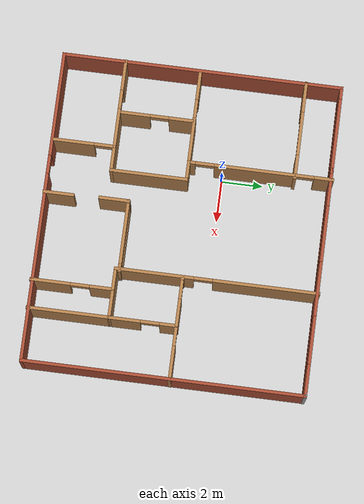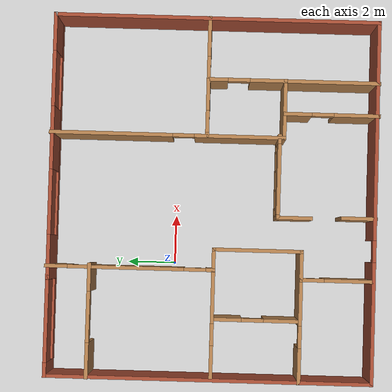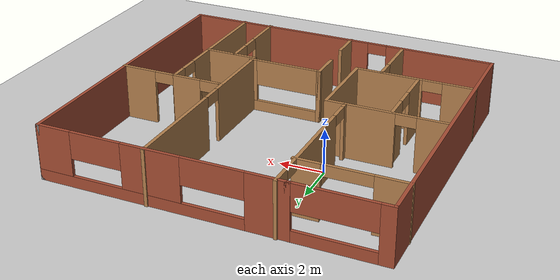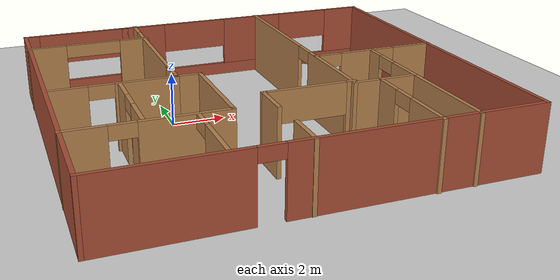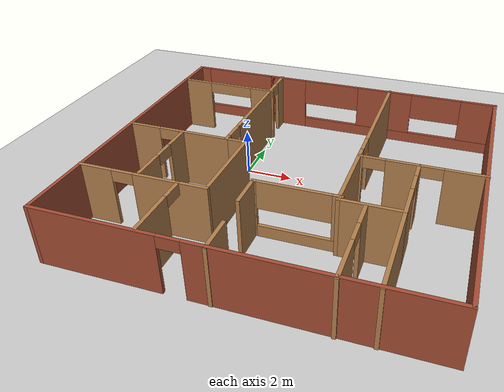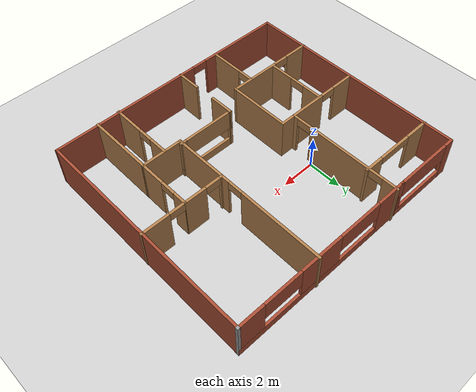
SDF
<sdf version="1.6">
 <world name="default">
  <plugin name="hello_world" filename="build/libhello_world.so"/>
  <light name="sun" type="directional">
   <pose>0 0 10 0 -0 0</pose>
   <diffuse>0.8 0.8 0.8 1</diffuse>
   <specular>0.2 0.2 0.2 1</specular>
   <attenuation>
    <range>1000</range>
    <constant>0.9</constant>
    <linear>0.01</linear>
    <quadratic>0.001</quadratic>
   </attenuation>
   <direction>-0.5 0.1 -0.9</direction>
  </light>
  <model name="ground_plane">
   <static>1</static>
   <link name="link">
    <collision name="collision">
     <geometry><plane><normal>0 0 1</normal><size>100 100</size></plane></geometry>
     <surface><friction><ode><mu>100</mu><mu2>50</mu2></ode></friction></surface>
    </collision>
    <visual name="visual">
     <cast_shadows>0</cast_shadows>
     <geometry><plane><normal>0 0 1</normal><size>100 100</size></plane></geometry>
     <material>
      <script><uri>file://media/materials/scripts/gazebo.material</uri><name>Gazebo/Grey</name></script>
     </material>
    </visual>
   </link>
  </model>
  <gravity>0 0 -9.8</gravity>
  <magnetic_field>6e-06 2.3e-05 -4.2e-05</magnetic_field>
  <atmosphere type="adiabatic"/>
  <physics name="default_physics" default="0" type="ode">
   <max_step_size>0.001</max_step_size>
   <real_time_factor>1</real_time_factor>
   <real_time_update_rate>1000</real_time_update_rate>
  </physics>
  <scene><ambient>0.4 0.4 0.4 1</ambient><background>0.7 0.7 0.7 1</background><shadows>1</shadows></scene>
  <spherical_coordinates>
   <surface_model>EARTH_WGS84</surface_model>
   <latitude_deg>0</latitude_deg>
   <longitude_deg>0</longitude_deg>
   <elevation>0</elevation>
   <heading_deg>0</heading_deg>
  </spherical_coordinates>
  <model name="Arpeggio_D_2">
   <pose>2.71001 -1.51912 0 0 -0 0</pose>
   <link name="Wall_0">
    <pose>2.00293 6.66912 0 0 -0 0</pose>
    <visual name="Wall_0_Visual_0">
     <pose>-4.58268 0 1.25 0 -0 0</pose>
     <geometry><box><size>1.83464 0.15 2.5</size></box></geometry>
     <material>
      <script><uri>file://media/materials/scripts/gazebo.material</uri><name>Gazebo/Bricks</name></script>
      <ambient>1 1 1 1</ambient>
     </material>
     <meta><layer>0</layer></meta>
    </visual>
    <collision name="Wall_0_Collision_0">
     <geometry><box><size>1.83464 0.15 2.5</size></box></geometry>
     <pose>-4.58268 0 1.25 0 -0 0</pose>
    </collision>
    <visual name="Wall_0_Visual_1">
     <pose>0.917321 0 0.25 0 -0 0</pose>
     <geometry><box><size>9.16536 0.15 0.5</size></box></geometry>
     <material>
      <script><uri>file://media/materials/scripts/gazebo.material</uri><name>Gazebo/Bricks</name></script>
      <ambient>1 1 1 1</ambient>
     </material>
     <meta><layer>0</layer></meta>
    </visual>
    <collision name="Wall_0_Collision_1">
     <geometry><box><size>9.16536 0.15 0.5</size></box></geometry>
     <pose>0.917321 0 0.25 0 -0 0</pose>
    </collision>
    <visual name="Wall_0_Visual_2">
     <pose>0.323908 0 1.5 0 -0 0</pose>
     <geometry><box><size>2.60676 0.15 2</size></box></geometry>
     <material>
      <script><uri>file://media/materials/scripts/gazebo.material</uri><name>Gazebo/Bricks</name></script>
      <ambient>1 1 1 1</ambient>
     </material>
     <meta><layer>0</layer></meta>
    </visual>
    <collision name="Wall_0_Collision_2">
     <geometry><box><size>2.60676 0.15 2</size></box></geometry>
     <pose>0.323908 0 1.5 0 -0 0</pose>
    </collision>
    <visual name="Wall_0_Visual_3">
     <pose>4.70887 0 1.5 0 -0 0</pose>
     <geometry><box><size>1.58225 0.15 2</size></box></geometry>
     <material>
      <script><uri>file://media/materials/scripts/gazebo.material</uri><name>Gazebo/Bricks</name></script>
      <ambient>1 1 1 1</ambient>
     </material>
     <meta><layer>0</layer></meta>
    </visual>
    <collision name="Wall_0_Collision_3">
     <geometry><box><size>1.58225 0.15 2</size></box></geometry>
     <pose>4.70887 0 1.5 0 -0 0</pose>
    </collision>
    <visual name="Wall_0_Visual_4">
     <pose>-2.32241 0 1.9 0 -0 0</pose>
     <geometry><box><size>2.68588 0.15 1.2</size></box></geometry>
     <material>
      <script><uri>file://media/materials/scripts/gazebo.material</uri><name>Gazebo/Bricks</name></script>
      <ambient>1 1 1 1</ambient>
     </material>
     <meta><layer>0</layer></meta>
    </visual>
    <collision name="Wall_0_Collision_4">
     <geometry><box><size>2.68588 0.15 1.2</size></box></geometry>
     <pose>-2.32241 0 1.9 0 -0 0</pose>
    </collision>
    <visual name="Wall_0_Visual_5">
     <pose>2.77252 0 1.9 0 -0 0</pose>
     <geometry><box><size>2.29046 0.15 1.2</size></box></geometry>
     <material>
      <script><uri>file://media/materials/scripts/gazebo.material</uri><name>Gazebo/Bricks</name></script>
      <ambient>1 1 1 1</ambient>
     </material>
     <meta><layer>0</layer></meta>
    </visual>
    <collision name="Wall_0_Collision_5">
     <geometry><box><size>2.29046 0.15 1.2</size></box></geometry>
     <pose>2.77252 0 1.9 0 -0 0</pose>
    </collision>
   </link>
   <link name="Wall_10">
    <pose>0.002933 -6.68088 0 0 -0 3.14159</pose>
    <visual name="Wall_10_Visual_0">
     <pose>-2.97644 0 1.25 0 -0 0</pose>
     <geometry><box><size>9.04713 0.15 2.5</size></box></geometry>
     <material>
      <script><uri>file://media/materials/scripts/gazebo.material</uri><name>Gazebo/Bricks</name></script>
      <ambient>1 1 1 1</ambient>
     </material>
     <meta><layer>0</layer></meta>
    </visual>
    <collision name="Wall_10_Collision_0">
     <geometry><box><size>9.04713 0.15 2.5</size></box></geometry>
     <pose>-2.97644 0 1.25 0 -0 0</pose>
    </collision>
    <visual name="Wall_10_Visual_1">
     <pose>4.97356 0 1.25 0 -0 0</pose>
     <geometry><box><size>5.05287 0.15 2.5</size></box></geometry>
     <material>
      <script><uri>file://media/materials/scripts/gazebo.material</uri><name>Gazebo/Bricks</name></script>
      <ambient>1 1 1 1</ambient>
     </material>
     <meta><layer>0</layer></meta>
    </visual>
    <collision name="Wall_10_Collision_1">
     <geometry><box><size>5.05287 0.15 2.5</size></box></geometry>
     <pose>4.97356 0 1.25 0 -0 0</pose>
    </collision>
    <visual name="Wall_10_Visual_2">
     <pose>1.99713 0 2.25 0 -0 0</pose>
     <geometry><box><size>0.9 0.15 0.5</size></box></geometry>
     <material>
      <script><uri>file://media/materials/scripts/gazebo.material</uri><name>Gazebo/Bricks</name></script>
      <ambient>1 1 1 1</ambient>
     </material>
     <meta><layer>0</layer></meta>
    </visual>
    <collision name="Wall_10_Collision_2">
     <geometry><box><size>0.9 0.15 0.5</size></box></geometry>
     <pose>1.99713 0 2.25 0 -0 0</pose>
    </collision>
   </link>
   <link name="Wall_11">
    <collision name="Wall_11_Collision">
     <geometry><box><size>13.5 0.15 2.5</size></box></geometry>
     <pose>0 0 1.25 0 -0 0</pose>
    </collision>
    <visual name="Wall_11_Visual">
     <pose>0 0 1.25 0 -0 0</pose>
     <geometry><box><size>13.5 0.15 2.5</size></box></geometry>
     <material>
      <script><uri>file://media/materials/scripts/gazebo.material</uri><name>Gazebo/Bricks</name></script>
      <ambient>1 1 1 1</ambient>
     </material>
     <meta><layer>0</layer></meta>
    </visual>
    <pose>-7.42207 -0.005883 0 0 -0 1.5708</pose>
   </link>
   <link name="Wall_13">
    <pose>-2.93719 3.31497 0 0 0 -1.5708</pose>
    <visual name="Wall_13_Visual_0">
     <pose>-3.02713 0 1.25 0 -0 0</pose>
     <geometry><box><size>0.94573 0.15 2.5</size></box></geometry>
     <material>
      <script><uri>file://media/materials/scripts/gazebo.material</uri><name>Gazebo/Wood</name></script>
      <ambient>1 1 1 1</ambient>
     </material>
     <meta><layer>0</layer></meta>
    </visual>
    <collision name="Wall_13_Collision_0">
     <geometry><box><size>0.94573 0.15 2.5</size></box></geometry>
     <pose>-3.02713 0 1.25 0 -0 0</pose>
    </collision>
    <visual name="Wall_13_Visual_1">
     <pose>0.276448 0 1.25 0 -0 0</pose>
     <geometry><box><size>3.86144 0.15 2.5</size></box></geometry>
     <material>
      <script><uri>file://media/materials/scripts/gazebo.material</uri><name>Gazebo/Wood</name></script>
      <ambient>1 1 1 1</ambient>
     </material>
     <meta><layer>0</layer></meta>
    </visual>
    <collision name="Wall_13_Collision_1">
     <geometry><box><size>3.86144 0.15 2.5</size></box></geometry>
     <pose>0.276448 0 1.25 0 -0 0</pose>
    </collision>
    <visual name="Wall_13_Visual_2">
     <pose>3.30358 0 1.25 0 -0 0</pose>
     <geometry><box><size>0.392835 0.15 2.5</size></box></geometry>
     <material>
      <script><uri>file://media/materials/scripts/gazebo.material</uri><name>Gazebo/Wood</name></script>
      <ambient>1 1 1 1</ambient>
     </material>
     <meta><layer>0</layer></meta>
    </visual>
    <collision name="Wall_13_Collision_2">
     <geometry><box><size>0.392835 0.15 2.5</size></box></geometry>
     <pose>3.30358 0 1.25 0 -0 0</pose>
    </collision>
    <visual name="Wall_13_Visual_3">
     <pose>-2.10427 0 2.25 0 -0 0</pose>
     <geometry><box><size>0.9 0.15 0.5</size></box></geometry>
     <material>
      <script><uri>file://media/materials/scripts/gazebo.material</uri><name>Gazebo/Wood</name></script>
      <ambient>1 1 1 1</ambient>
     </material>
     <meta><layer>0</layer></meta>
    </visual>
    <collision name="Wall_13_Collision_3">
     <geometry><box><size>0.9 0.15 0.5</size></box></geometry>
     <pose>-2.10427 0 2.25 0 -0 0</pose>
    </collision>
    <visual name="Wall_13_Visual_4">
     <pose>2.65716 0 2.25 0 -0 0</pose>
     <geometry><box><size>0.9 0.15 0.5</size></box></geometry>
     <material>
      <script><uri>file://media/materials/scripts/gazebo.material</uri><name>Gazebo/Wood</name></script>
      <ambient>1 1 1 1</ambient>
     </material>
     <meta><layer>0</layer></meta>
    </visual>
    <collision name="Wall_13_Collision_4">
     <geometry><box><size>0.9 0.15 0.5</size></box></geometry>
     <pose>2.65716 0 2.25 0 -0 0</pose>
    </collision>
   </link>
   <link name="Wall_14">
    <pose>-5.11219 -0.110027 0 0 -0 3.14159</pose>
    <visual name="Wall_14_Visual_0">
     <pose>-1.1265 0 1.25 0 -0 0</pose>
     <geometry><box><size>2.247 0.15 2.5</size></box></geometry>
     <material>
      <script><uri>file://media/materials/scripts/gazebo.material</uri><name>Gazebo/Wood</name></script>
      <ambient>1 1 1 1</ambient>
     </material>
     <meta><layer>0</layer></meta>
    </visual>
    <collision name="Wall_14_Collision_0">
     <geometry><box><size>2.247 0.15 2.5</size></box></geometry>
     <pose>-1.1265 0 1.25 0 -0 0</pose>
    </collision>
    <visual name="Wall_14_Visual_1">
     <pose>1.5735 0 1.25 0 -0 0</pose>
     <geometry><box><size>1.353 0.15 2.5</size></box></geometry>
     <material>
      <script><uri>file://media/materials/scripts/gazebo.material</uri><name>Gazebo/Wood</name></script>
      <ambient>1 1 1 1</ambient>
     </material>
     <meta><layer>0</layer></meta>
    </visual>
    <collision name="Wall_14_Collision_1">
     <geometry><box><size>1.353 0.15 2.5</size></box></geometry>
     <pose>1.5735 0 1.25 0 -0 0</pose>
    </collision>
    <visual name="Wall_14_Visual_2">
     <pose>0.447 0 2.25 0 -0 0</pose>
     <geometry><box><size>0.9 0.15 0.5</size></box></geometry>
     <material>
      <script><uri>file://media/materials/scripts/gazebo.material</uri><name>Gazebo/Wood</name></script>
      <ambient>1 1 1 1</ambient>
     </material>
     <meta><layer>0</layer></meta>
    </visual>
    <collision name="Wall_14_Collision_2">
     <geometry><box><size>0.9 0.15 0.5</size></box></geometry>
     <pose>0.447 0 2.25 0 -0 0</pose>
    </collision>
   </link>
   <link name="Wall_16">
    <collision name="Wall_16_Collision">
     <geometry><box><size>1 0.15 2.5</size></box></geometry>
     <pose>0 0 1.25 0 -0 0</pose>
    </collision>
    <visual name="Wall_16_Visual">
     <pose>0 0 1.25 0 -0 0</pose>
     <geometry><box><size>1 0.15 2.5</size></box></geometry>
     <material>
      <script><uri>file://media/materials/scripts/gazebo.material</uri><name>Gazebo/Wood</name></script>
      <ambient>1 1 1 1</ambient>
     </material>
     <meta><layer>0</layer></meta>
    </visual>
    <pose>-2.51219 -0.110027 0 0 -0 0</pose>
   </link>
   <link name="Wall_17">
    <collision name="Wall_17_Collision">
     <geometry><box><size>3.75 0.15 2.5</size></box></geometry>
     <pose>0 0 1.25 0 -0 0</pose>
    </collision>
    <visual name="Wall_17_Visual">
     <pose>0 0 1.25 0 -0 0</pose>
     <geometry><box><size>3.75 0.15 2.5</size></box></geometry>
     <material>
      <script><uri>file://media/materials/scripts/gazebo.material</uri><name>Gazebo/Wood</name></script>
      <ambient>1 1 1 1</ambient>
     </material>
     <meta><layer>0</layer></meta>
    </visual>
    <pose>-2.08719 -1.91003 0 0 0 -1.5708</pose>
   </link>
   <link name="Wall_18">
    <pose>-4.76219 -3.71003 0 0 -0 3.14159</pose>
    <visual name="Wall_18_Visual_0">
     <pose>-1.19659 0 1.25 0 -0 0</pose>
     <geometry><box><size>3.10682 0.15 2.5</size></box></geometry>
     <material>
      <script><uri>file://media/materials/scripts/gazebo.material</uri><name>Gazebo/Wood</name></script>
      <ambient>1 1 1 1</ambient>
     </material>
     <meta><layer>0</layer></meta>
    </visual>
    <collision name="Wall_18_Collision_0">
     <geometry><box><size>3.10682 0.15 2.5</size></box></geometry>
     <pose>-1.19659 0 1.25 0 -0 0</pose>
    </collision>
    <visual name="Wall_18_Visual_1">
     <pose>2.00341 0 1.25 0 -0 0</pose>
     <geometry><box><size>1.49318 0.15 2.5</size></box></geometry>
     <material>
      <script><uri>file://media/materials/scripts/gazebo.material</uri><name>Gazebo/Wood</name></script>
      <ambient>1 1 1 1</ambient>
     </material>
     <meta><layer>0</layer></meta>
    </visual>
    <collision name="Wall_18_Collision_1">
     <geometry><box><size>1.49318 0.15 2.5</size></box></geometry>
     <pose>2.00341 0 1.25 0 -0 0</pose>
    </collision>
    <visual name="Wall_18_Visual_2">
     <pose>0.80682 0 2.25 0 -0 0</pose>
     <geometry><box><size>0.9 0.15 0.5</size></box></geometry>
     <material>
      <script><uri>file://media/materials/scripts/gazebo.material</uri><name>Gazebo/Wood</name></script>
      <ambient>1 1 1 1</ambient>
     </material>
     <meta><layer>0</layer></meta>
    </visual>
    <collision name="Wall_18_Collision_2">
     <geometry><box><size>0.9 0.15 0.5</size></box></geometry>
     <pose>0.80682 0 2.25 0 -0 0</pose>
    </collision>
   </link>
   <link name="Wall_20">
    <pose>-3.23619 -5.15003 0 0 0 -1.5708</pose>
    <visual name="Wall_20_Visual_0">
     <pose>-1.445 0 1.25 0 -0 0</pose>
     <geometry><box><size>0.110002 0.15 2.5</size></box></geometry>
     <material>
      <script><uri>file://media/materials/scripts/gazebo.material</uri><name>Gazebo/Wood</name></script>
      <ambient>1 1 1 1</ambient>
     </material>
     <meta><layer>0</layer></meta>
    </visual>
    <collision name="Wall_20_Collision_0">
     <geometry><box><size>0.110002 0.15 2.5</size></box></geometry>
     <pose>-1.445 0 1.25 0 -0 0</pose>
    </collision>
    <visual name="Wall_20_Visual_1">
     <pose>0.505001 0 1.25 0 -0 0</pose>
     <geometry><box><size>1.99 0.15 2.5</size></box></geometry>
     <material>
      <script><uri>file://media/materials/scripts/gazebo.material</uri><name>Gazebo/Wood</name></script>
      <ambient>1 1 1 1</ambient>
     </material>
     <meta><layer>0</layer></meta>
    </visual>
    <collision name="Wall_20_Collision_1">
     <geometry><box><size>1.99 0.15 2.5</size></box></geometry>
     <pose>0.505001 0 1.25 0 -0 0</pose>
    </collision>
    <visual name="Wall_20_Visual_2">
     <pose>-0.939998 0 2.25 0 -0 0</pose>
     <geometry><box><size>0.9 0.15 0.5</size></box></geometry>
     <material>
      <script><uri>file://media/materials/scripts/gazebo.material</uri><name>Gazebo/Wood</name></script>
      <ambient>1 1 1 1</ambient>
     </material>
     <meta><layer>0</layer></meta>
    </visual>
    <collision name="Wall_20_Collision_2">
     <geometry><box><size>0.9 0.15 0.5</size></box></geometry>
     <pose>-0.939998 0 2.25 0 -0 0</pose>
    </collision>
   </link>
   <link name="Wall_22">
    <pose>-4.93819 -1.88103 0 0 0 -1.5708</pose>
    <visual name="Wall_22_Visual_0">
     <pose>-1.15846 0 1.25 0 -0 0</pose>
     <geometry><box><size>1.18308 0.15 2.5</size></box></geometry>
     <material>
      <script><uri>file://media/materials/scripts/gazebo.material</uri><name>Gazebo/Wood</name></script>
      <ambient>1 1 1 1</ambient>
     </material>
     <meta><layer>0</layer></meta>
    </visual>
    <collision name="Wall_22_Collision_0">
     <geometry><box><size>1.18308 0.15 2.5</size></box></geometry>
     <pose>-1.15846 0 1.25 0 -0 0</pose>
    </collision>
    <visual name="Wall_22_Visual_1">
     <pose>1.04154 0 1.25 0 -0 0</pose>
     <geometry><box><size>1.41692 0.15 2.5</size></box></geometry>
     <material>
      <script><uri>file://media/materials/scripts/gazebo.material</uri><name>Gazebo/Wood</name></script>
      <ambient>1 1 1 1</ambient>
     </material>
     <meta><layer>0</layer></meta>
    </visual>
    <collision name="Wall_22_Collision_1">
     <geometry><box><size>1.41692 0.15 2.5</size></box></geometry>
     <pose>1.04154 0 1.25 0 -0 0</pose>
    </collision>
    <visual name="Wall_22_Visual_2">
     <pose>-0.116922 0 2.25 0 -0 0</pose>
     <geometry><box><size>0.9 0.15 0.5</size></box></geometry>
     <material>
      <script><uri>file://media/materials/scripts/gazebo.material</uri><name>Gazebo/Wood</name></script>
      <ambient>1 1 1 1</ambient>
     </material>
     <meta><layer>0</layer></meta>
    </visual>
    <collision name="Wall_22_Collision_2">
     <geometry><box><size>0.9 0.15 0.5</size></box></geometry>
     <pose>-0.116922 0 2.25 0 -0 0</pose>
    </collision>
   </link>
   <link name="Wall_24">
    <pose>2.56284 1.92413 0 0 0 -1.5708</pose>
    <visual name="Wall_24_Visual_0">
     <pose>-2.3372 0 1.25 0 -0 0</pose>
     <geometry><box><size>5.07559 0.15 2.5</size></box></geometry>
     <material>
      <script><uri>file://media/materials/scripts/gazebo.material</uri><name>Gazebo/Wood</name></script>
      <ambient>1 1 1 1</ambient>
     </material>
     <meta><layer>0</layer></meta>
    </visual>
    <collision name="Wall_24_Collision_0">
     <geometry><box><size>5.07559 0.15 2.5</size></box></geometry>
     <pose>-2.3372 0 1.25 0 -0 0</pose>
    </collision>
    <visual name="Wall_24_Visual_1">
     <pose>2.9878 0 1.25 0 -0 0</pose>
     <geometry><box><size>3.77441 0.15 2.5</size></box></geometry>
     <material>
      <script><uri>file://media/materials/scripts/gazebo.material</uri><name>Gazebo/Wood</name></script>
      <ambient>1 1 1 1</ambient>
     </material>
     <meta><layer>0</layer></meta>
    </visual>
    <collision name="Wall_24_Collision_1">
     <geometry><box><size>3.77441 0.15 2.5</size></box></geometry>
     <pose>2.9878 0 1.25 0 -0 0</pose>
    </collision>
    <visual name="Wall_24_Visual_2">
     <pose>0.650593 0 2.25 0 -0 0</pose>
     <geometry><box><size>0.9 0.15 0.5</size></box></geometry>
     <material>
      <script><uri>file://media/materials/scripts/gazebo.material</uri><name>Gazebo/Wood</name></script>
      <ambient>1 1 1 1</ambient>
     </material>
     <meta><layer>0</layer></meta>
    </visual>
    <collision name="Wall_24_Collision_2">
     <geometry><box><size>0.9 0.15 0.5</size></box></geometry>
     <pose>0.650593 0 2.25 0 -0 0</pose>
    </collision>
   </link>
   <link name="Wall_28">
    <collision name="Wall_28_Collision">
     <geometry><box><size>2.5 0.15 2.5</size></box></geometry>
     <pose>0 0 1.25 0 -0 0</pose>
    </collision>
    <visual name="Wall_28_Visual">
     <pose>0 0 1.25 0 -0 0</pose>
     <geometry><box><size>2.5 0.15 2.5</size></box></geometry>
     <material>
      <script><uri>file://media/materials/scripts/gazebo.material</uri><name>Gazebo/Wood</name></script>
      <ambient>1 1 1 1</ambient>
     </material>
     <meta><layer>0</layer></meta>
    </visual>
    <pose>3.73784 -2.87587 0 0 -0 0</pose>
   </link>
   <link name="Wall_29">
    <collision name="Wall_29_Collision">
     <geometry><box><size>4 0.15 2.5</size></box></geometry>
     <pose>0 0 1.25 0 -0 0</pose>
    </collision>
    <visual name="Wall_29_Visual">
     <pose>0 0 1.25 0 -0 0</pose>
     <geometry><box><size>4 0.15 2.5</size></box></geometry>
     <material>
      <script><uri>file://media/materials/scripts/gazebo.material</uri><name>Gazebo/Wood</name></script>
      <ambient>1 1 1 1</ambient>
     </material>
     <meta><layer>0</layer></meta>
    </visual>
    <pose>4.91284 -4.80087 0 0 0 -1.5708</pose>
   </link>
   <link name="Wall_31">
    <pose>3.56758 -4.81497 0 0 0 -1.5708</pose>
    <visual name="Wall_31_Visual_0">
     <pose>-1.41263 0 1.25 0 -0 0</pose>
     <geometry><box><size>1.17475 0.15 2.5</size></box></geometry>
     <material>
      <script><uri>file://media/materials/scripts/gazebo.material</uri><name>Gazebo/Wood</name></script>
      <ambient>1 1 1 1</ambient>
     </material>
     <meta><layer>0</layer></meta>
    </visual>
    <collision name="Wall_31_Collision_0">
     <geometry><box><size>1.17475 0.15 2.5</size></box></geometry>
     <pose>-1.41263 0 1.25 0 -0 0</pose>
    </collision>
    <visual name="Wall_31_Visual_1">
     <pose>1.03737 0 1.25 0 -0 0</pose>
     <geometry><box><size>1.92525 0.15 2.5</size></box></geometry>
     <material>
      <script><uri>file://media/materials/scripts/gazebo.material</uri><name>Gazebo/Wood</name></script>
      <ambient>1 1 1 1</ambient>
     </material>
     <meta><layer>0</layer></meta>
    </visual>
    <collision name="Wall_31_Collision_1">
     <geometry><box><size>1.92525 0.15 2.5</size></box></geometry>
     <pose>1.03737 0 1.25 0 -0 0</pose>
    </collision>
    <visual name="Wall_31_Visual_2">
     <pose>-0.375249 0 2.25 0 -0 0</pose>
     <geometry><box><size>0.9 0.15 0.5</size></box></geometry>
     <material>
      <script><uri>file://media/materials/scripts/gazebo.material</uri><name>Gazebo/Wood</name></script>
      <ambient>1 1 1 1</ambient>
     </material>
     <meta><layer>0</layer></meta>
    </visual>
    <collision name="Wall_31_Collision_2">
     <geometry><box><size>0.9 0.15 0.5</size></box></geometry>
     <pose>-0.375249 0 2.25 0 -0 0</pose>
    </collision>
   </link>
   <link name="Wall_33">
    <pose>5.02109 0.302051 0 0 -0 0</pose>
    <visual name="Wall_33_Visual_0">
     <pose>-2.40185 0 1.25 0 -0 0</pose>
     <geometry><box><size>0.196296 0.15 2.5</size></box></geometry>
     <material>
      <script><uri>file://media/materials/scripts/gazebo.material</uri><name>Gazebo/Wood</name></script>
      <ambient>1 1 1 1</ambient>
     </material>
     <meta><layer>0</layer></meta>
    </visual>
    <collision name="Wall_33_Collision_0">
     <geometry><box><size>0.196296 0.15 2.5</size></box></geometry>
     <pose>-2.40185 0 1.25 0 -0 0</pose>
    </collision>
    <visual name="Wall_33_Visual_1">
     <pose>-0.736496 0 1.25 0 -0 0</pose>
     <geometry><box><size>1.33442 0.15 2.5</size></box></geometry>
     <material>
      <script><uri>file://media/materials/scripts/gazebo.material</uri><name>Gazebo/Wood</name></script>
      <ambient>1 1 1 1</ambient>
     </material>
     <meta><layer>0</layer></meta>
    </visual>
    <collision name="Wall_33_Collision_1">
     <geometry><box><size>1.33442 0.15 2.5</size></box></geometry>
     <pose>-0.736496 0 1.25 0 -0 0</pose>
    </collision>
    <visual name="Wall_33_Visual_2">
     <pose>1.66536 0 1.25 0 -0 0</pose>
     <geometry><box><size>1.66929 0.15 2.5</size></box></geometry>
     <material>
      <script><uri>file://media/materials/scripts/gazebo.material</uri><name>Gazebo/Wood</name></script>
      <ambient>1 1 1 1</ambient>
     </material>
     <meta><layer>0</layer></meta>
    </visual>
    <collision name="Wall_33_Collision_2">
     <geometry><box><size>1.66929 0.15 2.5</size></box></geometry>
     <pose>1.66536 0 1.25 0 -0 0</pose>
    </collision>
    <visual name="Wall_33_Visual_3">
     <pose>-1.8537 0 2.25 0 -0 0</pose>
     <geometry><box><size>0.9 0.15 0.5</size></box></geometry>
     <material>
      <script><uri>file://media/materials/scripts/gazebo.material</uri><name>Gazebo/Wood</name></script>
      <ambient>1 1 1 1</ambient>
     </material>
     <meta><layer>0</layer></meta>
    </visual>
    <collision name="Wall_33_Collision_3">
     <geometry><box><size>0.9 0.15 0.5</size></box></geometry>
     <pose>-1.8537 0 2.25 0 -0 0</pose>
    </collision>
    <visual name="Wall_33_Visual_4">
     <pose>0.380713 0 2.25 0 -0 0</pose>
     <geometry><box><size>0.9 0.15 0.5</size></box></geometry>
     <material>
      <script><uri>file://media/materials/scripts/gazebo.material</uri><name>Gazebo/Wood</name></script>
      <ambient>1 1 1 1</ambient>
     </material>
     <meta><layer>0</layer></meta>
    </visual>
    <collision name="Wall_33_Collision_4">
     <geometry><box><size>0.9 0.15 0.5</size></box></geometry>
     <pose>0.380713 0 2.25 0 -0 0</pose>
    </collision>
   </link>
   <link name="Wall_35">
    <pose>4.91099 -1.29848 0 0 0 -1.56963</pose>
    <visual name="Wall_35_Visual_0">
     <pose>-1.22696 0 1.25 0 -0 0</pose>
     <geometry><box><size>0.850867 0.15 2.5</size></box></geometry>
     <material>
      <script><uri>file://media/materials/scripts/gazebo.material</uri><name>Gazebo/Wood</name></script>
      <ambient>1 1 1 1</ambient>
     </material>
     <meta><layer>0</layer></meta>
    </visual>
    <collision name="Wall_35_Collision_0">
     <geometry><box><size>0.850867 0.15 2.5</size></box></geometry>
     <pose>-1.22696 0 1.25 0 -0 0</pose>
    </collision>
    <visual name="Wall_35_Visual_1">
     <pose>0.875434 0 1.25 0 -0 0</pose>
     <geometry><box><size>1.55393 0.15 2.5</size></box></geometry>
     <material>
      <script><uri>file://media/materials/scripts/gazebo.material</uri><name>Gazebo/Wood</name></script>
      <ambient>1 1 1 1</ambient>
     </material>
     <meta><layer>0</layer></meta>
    </visual>
    <collision name="Wall_35_Collision_1">
     <geometry><box><size>1.55393 0.15 2.5</size></box></geometry>
     <pose>0.875434 0 1.25 0 -0 0</pose>
    </collision>
    <visual name="Wall_35_Visual_2">
     <pose>-0.351529 0 2.25 0 -0 0</pose>
     <geometry><box><size>0.9 0.15 0.5</size></box></geometry>
     <material>
      <script><uri>file://media/materials/scripts/gazebo.material</uri><name>Gazebo/Wood</name></script>
      <ambient>1 1 1 1</ambient>
     </material>
     <meta><layer>0</layer></meta>
    </visual>
    <collision name="Wall_35_Collision_2">
     <geometry><box><size>0.9 0.15 0.5</size></box></geometry>
     <pose>-0.351529 0 2.25 0 -0 0</pose>
    </collision>
   </link>
   <link name="Wall_37">
    <collision name="Wall_37_Collision">
     <geometry><box><size>1.5 0.15 2.5</size></box></geometry>
     <pose>0 0 1.25 0 -0 0</pose>
    </collision>
    <visual name="Wall_37_Visual">
     <pose>0 0 1.25 0 -0 0</pose>
     <geometry><box><size>1.5 0.15 2.5</size></box></geometry>
     <material>
      <script><uri>file://media/materials/scripts/gazebo.material</uri><name>Gazebo/Wood</name></script>
      <ambient>1 1 1 1</ambient>
     </material>
     <meta><layer>0</layer></meta>
    </visual>
    <pose>-0.711585 -3.3715 0 0 -0 1.5708</pose>
   </link>
   <link name="Wall_39">
    <collision name="Wall_39_Collision">
     <geometry><box><size>1.5 0.15 2.5</size></box></geometry>
     <pose>0 0 1.25 0 -0 0</pose>
    </collision>
    <visual name="Wall_39_Visual">
     <pose>0 0 1.25 0 -0 0</pose>
     <geometry><box><size>1.5 0.15 2.5</size></box></geometry>
     <material>
      <script><uri>file://media/materials/scripts/gazebo.material</uri><name>Gazebo/Wood</name></script>
      <ambient>1 1 1 1</ambient>
     </material>
     <meta><layer>0</layer></meta>
    </visual>
    <pose>-0.665324 -6.03152 0 0 -0 1.5708</pose>
   </link>
   <link name="Wall_4">
    <pose>-5.37207 6.66912 0 0 -0 0</pose>
    <visual name="Wall_4_Visual_0">
     <pose>-1.82358 0 1.25 0 -0 0</pose>
     <geometry><box><size>0.602832 0.15 2.5</size></box></geometry>
     <material>
      <script><uri>file://media/materials/scripts/gazebo.material</uri><name>Gazebo/Bricks</name></script>
      <ambient>1 1 1 1</ambient>
     </material>
     <meta><layer>0</layer></meta>
    </visual>
    <collision name="Wall_4_Collision_0">
     <geometry><box><size>0.602832 0.15 2.5</size></box></geometry>
     <pose>-1.82358 0 1.25 0 -0 0</pose>
    </collision>
    <visual name="Wall_4_Visual_1">
     <pose>0.301416 0 0.25 0 -0 0</pose>
     <geometry><box><size>3.64717 0.15 0.5</size></box></geometry>
     <material>
      <script><uri>file://media/materials/scripts/gazebo.material</uri><name>Gazebo/Bricks</name></script>
      <ambient>1 1 1 1</ambient>
     </material>
     <meta><layer>0</layer></meta>
    </visual>
    <collision name="Wall_4_Collision_1">
     <geometry><box><size>3.64717 0.15 0.5</size></box></geometry>
     <pose>0.301416 0 0.25 0 -0 0</pose>
    </collision>
    <visual name="Wall_4_Visual_2">
     <pose>1.99416 0 1.5 0 -0 0</pose>
     <geometry><box><size>0.26168 0.15 2</size></box></geometry>
     <material>
      <script><uri>file://media/materials/scripts/gazebo.material</uri><name>Gazebo/Bricks</name></script>
      <ambient>1 1 1 1</ambient>
     </material>
     <meta><layer>0</layer></meta>
    </visual>
    <collision name="Wall_4_Collision_2">
     <geometry><box><size>0.26168 0.15 2</size></box></geometry>
     <pose>1.99416 0 1.5 0 -0 0</pose>
    </collision>
    <visual name="Wall_4_Visual_3">
     <pose>0.170576 0 1.9 0 -0 0</pose>
     <geometry><box><size>3.38549 0.15 1.2</size></box></geometry>
     <material>
      <script><uri>file://media/materials/scripts/gazebo.material</uri><name>Gazebo/Bricks</name></script>
      <ambient>1 1 1 1</ambient>
     </material>
     <meta><layer>0</layer></meta>
    </visual>
    <collision name="Wall_4_Collision_3">
     <geometry><box><size>3.38549 0.15 1.2</size></box></geometry>
     <pose>0.170576 0 1.9 0 -0 0</pose>
    </collision>
   </link>
   <link name="Wall_43">
    <pose>0.963415 -2.6965 0 0 -0 0</pose>
    <visual name="Wall_43_Visual_0">
     <pose>-1.6466 0 1.25 0 -0 0</pose>
     <geometry><box><size>0.20681 0.15 2.5</size></box></geometry>
     <material>
      <script><uri>file://media/materials/scripts/gazebo.material</uri><name>Gazebo/Wood</name></script>
      <ambient>1 1 1 1</ambient>
     </material>
     <meta><layer>0</layer></meta>
    </visual>
    <collision name="Wall_43_Collision_0">
     <geometry><box><size>0.20681 0.15 2.5</size></box></geometry>
     <pose>-1.6466 0 1.25 0 -0 0</pose>
    </collision>
    <visual name="Wall_43_Visual_1">
     <pose>0.103405 0 0.25 0 -0 0</pose>
     <geometry><box><size>3.29319 0.15 0.5</size></box></geometry>
     <material>
      <script><uri>file://media/materials/scripts/gazebo.material</uri><name>Gazebo/Wood</name></script>
      <ambient>1 1 1 1</ambient>
     </material>
     <meta><layer>0</layer></meta>
    </visual>
    <collision name="Wall_43_Collision_1">
     <geometry><box><size>3.29319 0.15 0.5</size></box></geometry>
     <pose>0.103405 0 0.25 0 -0 0</pose>
    </collision>
    <visual name="Wall_43_Visual_2">
     <pose>1.55479 0 1.5 0 -0 0</pose>
     <geometry><box><size>0.390415 0.15 2</size></box></geometry>
     <material>
      <script><uri>file://media/materials/scripts/gazebo.material</uri><name>Gazebo/Wood</name></script>
      <ambient>1 1 1 1</ambient>
     </material>
     <meta><layer>0</layer></meta>
    </visual>
    <collision name="Wall_43_Collision_2">
     <geometry><box><size>0.390415 0.15 2</size></box></geometry>
     <pose>1.55479 0 1.5 0 -0 0</pose>
    </collision>
    <visual name="Wall_43_Visual_3">
     <pose>-0.091802 0 1.9 0 -0 0</pose>
     <geometry><box><size>2.90278 0.15 1.2</size></box></geometry>
     <material>
      <script><uri>file://media/materials/scripts/gazebo.material</uri><name>Gazebo/Wood</name></script>
      <ambient>1 1 1 1</ambient>
     </material>
     <meta><layer>0</layer></meta>
    </visual>
    <collision name="Wall_43_Collision_3">
     <geometry><box><size>2.90278 0.15 1.2</size></box></geometry>
     <pose>-0.091802 0 1.9 0 -0 0</pose>
    </collision>
   </link>
   <link name="Wall_45">
    <pose>-5.14609 4.96704 0 0 -0 0</pose>
    <visual name="Wall_45_Visual_0">
     <pose>-1.63149 0 1.25 0 -0 0</pose>
     <geometry><box><size>1.48701 0.15 2.5</size></box></geometry>
     <material>
      <script><uri>file://media/materials/scripts/gazebo.material</uri><name>Gazebo/Wood</name></script>
      <ambient>1 1 1 1</ambient>
     </material>
     <meta><layer>0</layer></meta>
    </visual>
    <collision name="Wall_45_Collision_0">
     <geometry><box><size>1.48701 0.15 2.5</size></box></geometry>
     <pose>-1.63149 0 1.25 0 -0 0</pose>
    </collision>
    <visual name="Wall_45_Visual_1">
     <pose>1.79201 0 1.25 0 -0 0</pose>
     <geometry><box><size>1.16598 0.15 2.5</size></box></geometry>
     <material>
      <script><uri>file://media/materials/scripts/gazebo.material</uri><name>Gazebo/Wood</name></script>
      <ambient>1 1 1 1</ambient>
     </material>
     <meta><layer>0</layer></meta>
    </visual>
    <collision name="Wall_45_Collision_1">
     <geometry><box><size>1.16598 0.15 2.5</size></box></geometry>
     <pose>1.79201 0 1.25 0 -0 0</pose>
    </collision>
    <visual name="Wall_45_Visual_2">
     <pose>0.160518 0 2.25 0 -0 0</pose>
     <geometry><box><size>2.09701 0.15 0.5</size></box></geometry>
     <material>
      <script><uri>file://media/materials/scripts/gazebo.material</uri><name>Gazebo/Wood</name></script>
      <ambient>1 1 1 1</ambient>
     </material>
     <meta><layer>0</layer></meta>
    </visual>
    <collision name="Wall_45_Collision_2">
     <geometry><box><size>2.09701 0.15 0.5</size></box></geometry>
     <pose>0.160518 0 2.25 0 -0 0</pose>
    </collision>
   </link>
   <link name="Wall_7">
    <collision name="Wall_7_Collision">
     <geometry><box><size>0.16 0.15 2.5</size></box></geometry>
     <pose>0 0 1.25 0 -0 0</pose>
    </collision>
    <visual name="Wall_7_Visual">
     <pose>0 0 1.25 0 -0 0</pose>
     <geometry><box><size>0.16 0.15 2.5</size></box></geometry>
     <material>
      <script><uri>file://media/materials/scripts/gazebo.material</uri><name>Gazebo/Grey</name></script>
      <ambient>1 1 1 1</ambient>
     </material>
     <meta><layer>0</layer></meta>
    </visual>
    <pose>7.43293 6.66912 0 0 -0 0</pose>
   </link>
   <link name="Wall_9">
    <collision name="Wall_9_Collision">
     <geometry><box><size>13.5 0.15 2.5</size></box></geometry>
     <pose>0 0 1.25 0 -0 0</pose>
    </collision>
    <visual name="Wall_9_Visual">
     <pose>0 0 1.25 0 -0 0</pose>
     <geometry><box><size>13.5 0.15 2.5</size></box></geometry>
     <material>
      <script><uri>file://media/materials/scripts/gazebo.material</uri><name>Gazebo/Bricks</name></script>
      <ambient>1 1 1 1</ambient>
     </material>
     <meta><layer>0</layer></meta>
    </visual>
    <pose>7.42793 -0.005883 0 0 0 -1.5708</pose>
   </link>
   <static>1</static>
  </model>
 </world>
</sdf>
